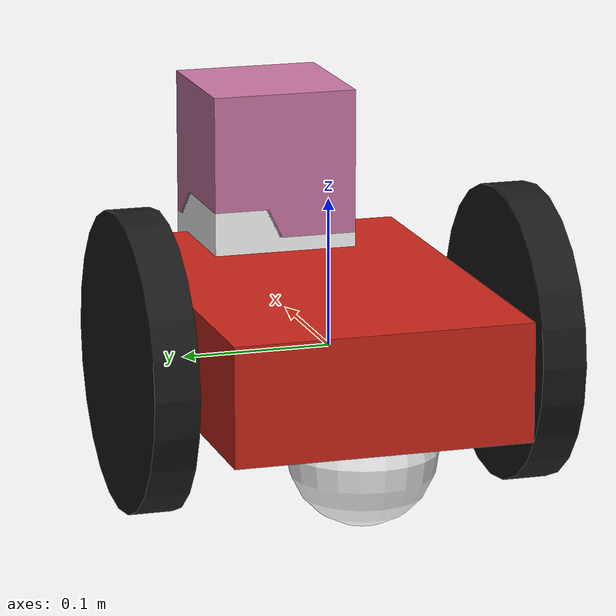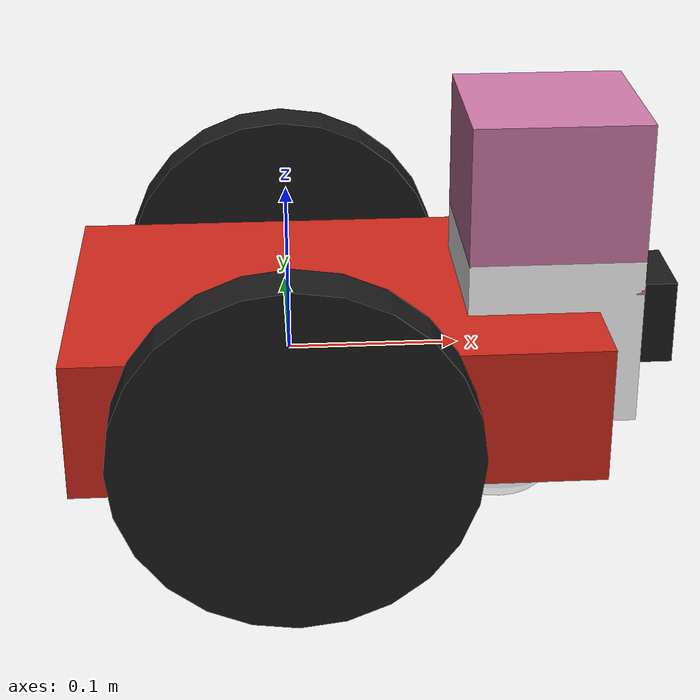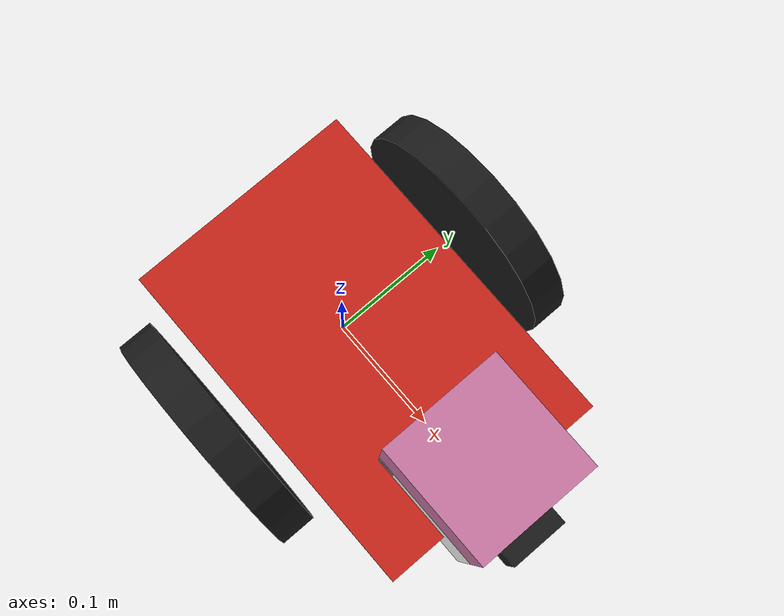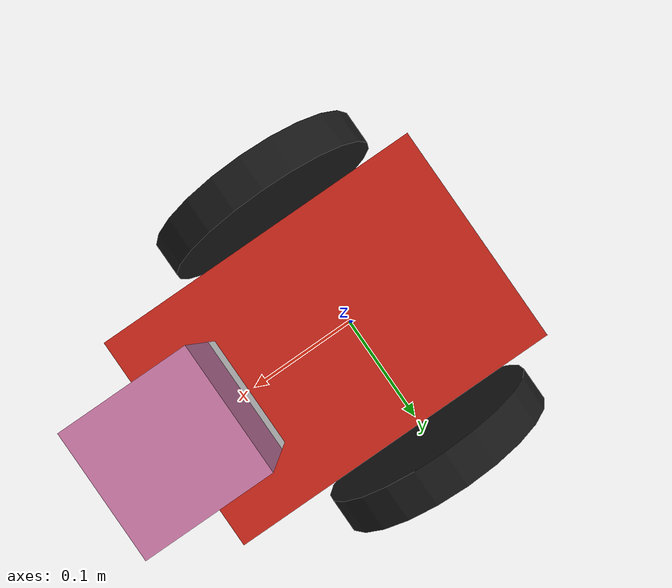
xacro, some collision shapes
<?xml version='1.0'?>

<robot name="my_robot" xmlns:xacro="http://www.ros.org/wiki/xacro">

  <xacro:include filename="$(find my_robot)/urdf/my_robot.gazebo" />

  <material name="red">
    <color rgba="0.8 0.15 0.1 1.0"/>
  </material>

  <material name="dark_gray">
    <color rgba="0.1 0.1 0.1 1"/>
  </material>

  <material name="white">
    <color rgba="1 1 1 1"/>
  </material>

  <link name="robot_footprint"></link>

  <joint name="robot_footprint_joint" type="fixed">
    <origin xyz="0 0 0" rpy="0 0 0" />
    <parent link="robot_footprint"/>
    <child link="chassis" />
  </joint>

  <link name='chassis'>
    <pose>0 0 0.1 0 0 0</pose>

    <inertial>
      <mass value="15.0"/>
      <origin xyz="0 0 0" rpy=" 0 0 0"/>
      <inertia
          ixx="0.1" ixy="0" ixz="0"
          iyy="0.1" iyz="0"
          izz="0.1"
      />
    </inertial>

    <collision name='chassis_collision'>
      <origin xyz="0.025 0 0" rpy=" 0 0 0"/>
      <geometry>
        <box size=".3 .2 .08"/>
      </geometry>
    </collision>

    <visual name='chassis_visual'>
      <origin xyz="0.025 0 0" rpy=" 0 0 0"/>
      <geometry>
        <box size=".3 .2 .08"/>
      </geometry>
      <material name="red"/>
    </visual>

    <collision name='sensor_mount_collision'>
      <origin xyz="0.15 0 0.02" rpy=" 0 0 0"/>
      <geometry>
        <box size=".1 .1 .1"/>
      </geometry>
    </collision>

    <visual name='sensor_mount_visual'>
      <origin xyz="0.15 0 0.02" rpy=" 0 0 0"/>
      <geometry>
        <box size=".1 .1 .1"/>
      </geometry>
      <material name="white"/>
    </visual>

    <collision name='back_caster_collision'>
      <origin xyz="-0.075 0 -0.05" rpy=" 0 0 0"/>
      <geometry>
        <sphere radius="0.0499"/>
      </geometry>
    </collision>

    <visual name='back_caster_visual'>
      <origin xyz="-0.075 0 -0.05" rpy=" 0 0 0"/>
      <geometry>
        <sphere radius="0.05"/>
      </geometry>
      <material name="white"/>
    </visual>

    <collision name='front_caster_collision'>
      <origin xyz="0.125 0 -0.05" rpy=" 0 0 0"/>
      <geometry>
        <sphere radius="0.0499"/>
      </geometry>
    </collision>

    <visual name='front_caster_visual'>
      <origin xyz="0.125 0 -0.05" rpy=" 0 0 0"/>
      <geometry>
        <sphere radius="0.05"/>
      </geometry>
      <material name="white"/>
    </visual>

  </link>

  <link name='left_wheel'>

    <inertial>
      <mass value="5.0"/>
      <origin xyz="0 0 0" rpy="0 1.5707 1.5707"/>
      <inertia
          ixx="0.1" ixy="0" ixz="0"
          iyy="0.1" iyz="0"
          izz="0.1"
      />
    </inertial>

    <collision name='left_wheel_collision'>
      <origin xyz="0 0 0" rpy="0 1.5707 1.5707"/>
      <geometry>
        <cylinder radius="0.1" length="0.03"/>
      </geometry>
    </collision>

    <visual name='left_wheel_visual'>
      <origin xyz="0 0 0" rpy="0 1.5707 1.5707"/>
      <geometry>
        <cylinder radius="0.1" length="0.03"/>
      </geometry>
      <material name="dark_gray"/>
    </visual>

  </link>

  <joint type="continuous" name="left_wheel_hinge">
    <origin xyz="0 0.13 0" rpy="0 0 0"/>
    <child link="left_wheel"/>
    <parent link="chassis"/>
    <axis xyz="0 1 0" rpy="0 0 0"/>
    <limit effort="10000" velocity="1000"/>
    <dynamics damping="1.0" friction="1.0"/>
  </joint>

<link name='right_wheel'>

    <inertial>
      <mass value="5.0"/>
      <origin xyz="0 0 0" rpy="0 1.5707 1.5707"/>
      <inertia
          ixx="0.1" ixy="0" ixz="0"
          iyy="0.1" iyz="0"
          izz="0.1"
      />
    </inertial>

    <collision name='right_wheel_collision'>
      <origin xyz="0 0 0" rpy="0 1.5707 1.5707"/>
      <geometry>
        <cylinder radius="0.1" length="0.03"/>
      </geometry>
    </collision>

    <visual name='right_wheel_visual'>
      <origin xyz="0 0 0" rpy="0 1.5707 1.5707"/>
      <geometry>
        <cylinder radius="0.1" length="0.03"/>
      </geometry>
      <material name="dark_gray"/>
    </visual>

  </link>

  <joint type="continuous" name="right_wheel_hinge">
    <origin xyz="0 -0.13 0" rpy="0 0 0"/>
    <child link="right_wheel"/>
    <parent link="chassis"/>
    <axis xyz="0 1 0" rpy="0 0 0"/>
    <limit effort="10000" velocity="1000"/>
    <dynamics damping="1.0" friction="1.0"/>
  </joint>

  <link name='camera'>

    <inertial>
      <mass value="0.1"/>
      <origin xyz="0 0 0" rpy="0 0 0"/>
      <box_inertia m="0.1" x="0.05" y="0.05" z="0.05"/>
      <inertia
          ixx="1e-6" ixy="0" ixz="0"
          iyy="1e-6" iyz="0"
          izz="1e-6"
      />
    </inertial>

    <collision name='camera_collision'>
      <origin xyz="0 0 0" rpy="0 0 0"/>
      <geometry>
        <box size="0.05 0.05 0.05"/>
      </geometry>
    </collision>

    <visual name='camera_visual'>
      <origin xyz="0 0 0" rpy="0 0 0"/>
      <geometry>
        <box size="0.05 0.05 0.05"/>
      </geometry>
      <material name="dark_gray"/>
    </visual>

  </link>

  <joint type="fixed" name="camera_joint">
    <origin xyz="0.2 0 0.02" rpy="0 0 0"/>
    <child link="camera"/>
    <parent link="chassis"/>
    <axis xyz="0 1 0" rpy="0 0 0"/>
  </joint>

  <link name="camera_link_optical">
  </link>

  <joint name="camera_optical_joint" type="fixed">
    <origin xyz="0 0 0" rpy="-1.5707 0 -1.5707"/>
    <parent link="camera"/>
    <child link="camera_link_optical"/>
  </joint>

  <link name='hokuyo'>

    <inertial>
      <mass value="1e-5"/>
      <origin xyz="0 0 0" rpy="0 0 0"/>
      <inertia
          ixx="1e-6" ixy="0" ixz="0"
          iyy="1e-6" iyz="0"
          izz="1e-6"
      />
    </inertial>

    <collision name='hokuyo_collision'>
      <origin xyz="0 0 0" rpy="0 0 0"/>
      <geometry>
        <box size="0.1 0.1 0.1"/>
      </geometry>
    </collision>

    <visual name='hokuyo_visual'>
      <origin xyz="0 0 0" rpy="0 0 0"/>
      <geometry>
        <mesh filename="package://my_robot/meshes/hokuyo.dae"/>
      </geometry>
    </visual>

  </link>

  <joint type="fixed" name="hokuyo_joint">
    <origin xyz="0.15 0 0.1" rpy="0 0 0"/>
    <child link="hokuyo"/>
    <parent link="chassis"/>
    <axis xyz="0 1 0" rpy="0 0 0"/>
  </joint>
</robot>
